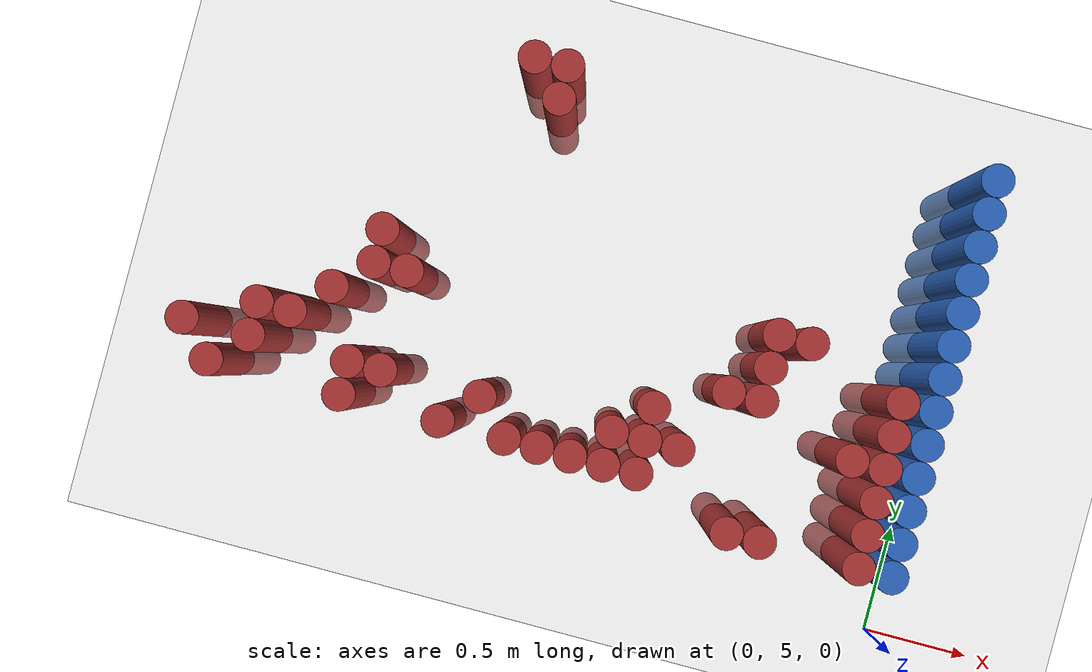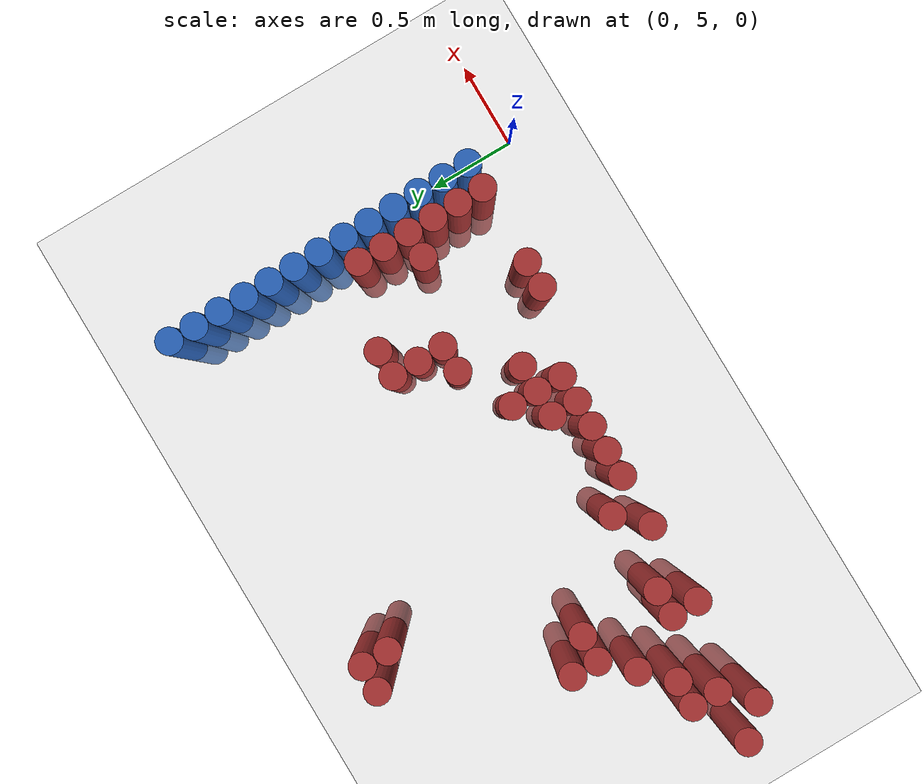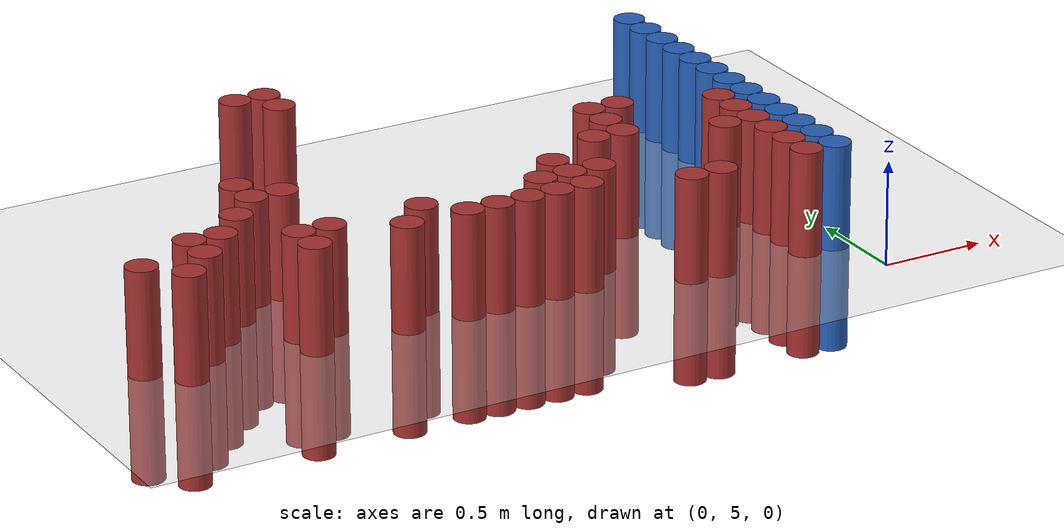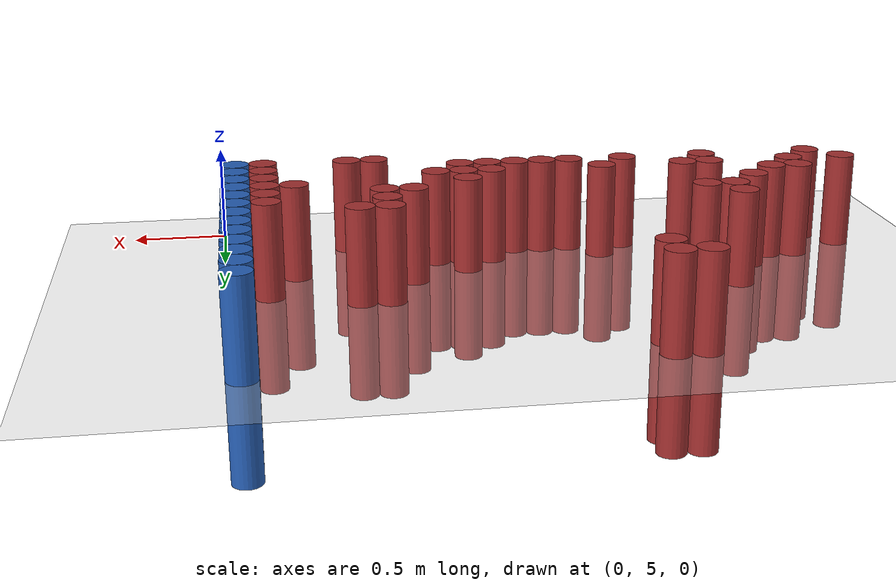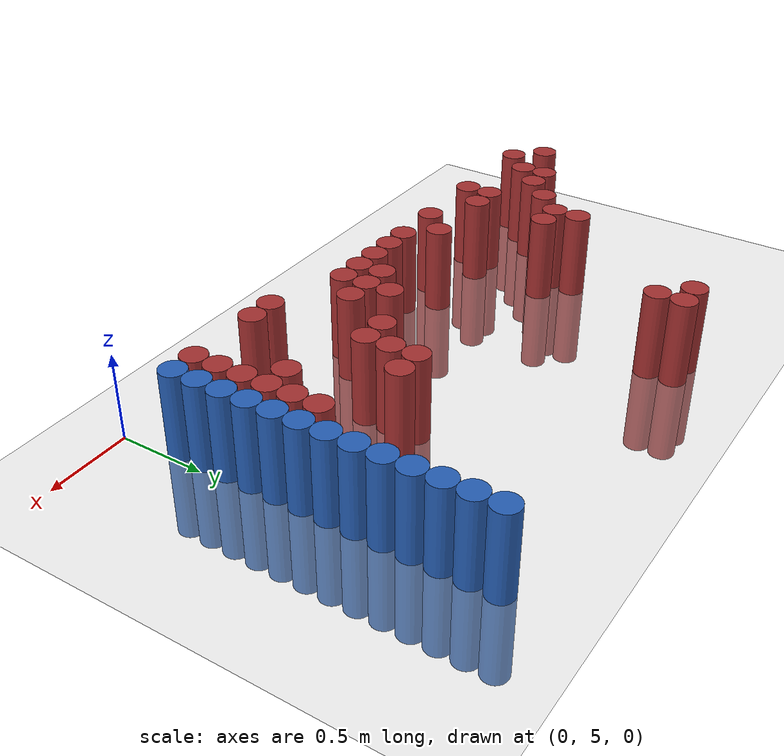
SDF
<sdf version="1.6">
 <world name="default">
  <model name="ground_plane">
   <static>1</static>
   <link name="link">
    <collision name="collision">
     <geometry><plane><normal>0 0 1</normal><size>100 100</size></plane></geometry>
     <surface><friction><ode><mu>100</mu><mu2>50</mu2></ode></friction></surface>
    </collision>
    <visual name="visual">
     <cast_shadows>0</cast_shadows>
     <geometry><plane><normal>0 0 1</normal><size>100 100</size></plane></geometry>
     <material>
      <script><uri>file://media/materials/scripts/gazebo.material</uri><name>Gazebo/Grey</name></script>
     </material>
    </visual>
   </link>
  </model>
  <model name="unit_cylinder_164">
   <static>1</static>
   <pose>-3.375000 5.625000 0.000000 0.000000 0.000000 0.000000</pose>
   <link name="link">
    <inertial>
     <mass>1</mass>
     <inertia><ixx>0.145833</ixx><ixy>0</ixy><ixz>0</ixz><iyy>0.145833</iyy><iyz>0</iyz><izz>0.125</izz></inertia>
    </inertial>
    <collision name="collision">
     <geometry><cylinder><radius>0.075000</radius><length>1</length></cylinder></geometry>
    </collision>
    <visual name="visual">
     <geometry><cylinder><radius>0.075000</radius><length>1</length></cylinder></geometry>
     <material>
      <ambient>0.648000 0.192000 0.192000 1</ambient>
      <diffuse>0.648000 0.192000 0.192000 1</diffuse>
     </material>
     <material>
      <script><name>Gazebo/Grey</name><uri>file://media/materials/scripts/gazebo.material</uri></script>
     </material>
    </visual>
   </link>
  </model>
  <model name="unit_cylinder_165">
   <static>1</static>
   <pose>-3.225000 5.475000 0.000000 0.000000 0.000000 0.000000</pose>
   <link name="link">
    <inertial>
     <mass>1</mass>
     <inertia><ixx>0.145833</ixx><ixy>0</ixy><ixz>0</ixz><iyy>0.145833</iyy><iyz>0</iyz><izz>0.125</izz></inertia>
    </inertial>
    <collision name="collision">
     <geometry><cylinder><radius>0.075000</radius><length>1</length></cylinder></geometry>
    </collision>
    <visual name="visual">
     <geometry><cylinder><radius>0.075000</radius><length>1</length></cylinder></geometry>
     <material>
      <ambient>0.648000 0.192000 0.192000 1</ambient>
      <diffuse>0.648000 0.192000 0.192000 1</diffuse>
     </material>
     <material>
      <script><name>Gazebo/Grey</name><uri>file://media/materials/scripts/gazebo.material</uri></script>
     </material>
    </visual>
   </link>
  </model>
  <model name="unit_cylinder_166">
   <static>1</static>
   <pose>-3.075000 5.625000 0.000000 0.000000 0.000000 0.000000</pose>
   <link name="link">
    <inertial>
     <mass>1</mass>
     <inertia><ixx>0.145833</ixx><ixy>0</ixy><ixz>0</ixz><iyy>0.145833</iyy><iyz>0</iyz><izz>0.125</izz></inertia>
    </inertial>
    <collision name="collision">
     <geometry><cylinder><radius>0.075000</radius><length>1</length></cylinder></geometry>
    </collision>
    <visual name="visual">
     <geometry><cylinder><radius>0.075000</radius><length>1</length></cylinder></geometry>
     <material>
      <ambient>0.648000 0.192000 0.192000 1</ambient>
      <diffuse>0.648000 0.192000 0.192000 1</diffuse>
     </material>
     <material>
      <script><name>Gazebo/Grey</name><uri>file://media/materials/scripts/gazebo.material</uri></script>
     </material>
    </visual>
   </link>
  </model>
  <model name="unit_cylinder_167">
   <static>1</static>
   <pose>-3.075000 5.775000 0.000000 0.000000 0.000000 0.000000</pose>
   <link name="link">
    <inertial>
     <mass>1</mass>
     <inertia><ixx>0.145833</ixx><ixy>0</ixy><ixz>0</ixz><iyy>0.145833</iyy><iyz>0</iyz><izz>0.125</izz></inertia>
    </inertial>
    <collision name="collision">
     <geometry><cylinder><radius>0.075000</radius><length>1</length></cylinder></geometry>
    </collision>
    <visual name="visual">
     <geometry><cylinder><radius>0.075000</radius><length>1</length></cylinder></geometry>
     <material>
      <ambient>0.648000 0.192000 0.192000 1</ambient>
      <diffuse>0.648000 0.192000 0.192000 1</diffuse>
     </material>
     <material>
      <script><name>Gazebo/Grey</name><uri>file://media/materials/scripts/gazebo.material</uri></script>
     </material>
    </visual>
   </link>
  </model>
  <model name="unit_cylinder_168">
   <static>1</static>
   <pose>-2.925000 5.775000 0.000000 0.000000 0.000000 0.000000</pose>
   <link name="link">
    <inertial>
     <mass>1</mass>
     <inertia><ixx>0.145833</ixx><ixy>0</ixy><ixz>0</ixz><iyy>0.145833</iyy><iyz>0</iyz><izz>0.125</izz></inertia>
    </inertial>
    <collision name="collision">
     <geometry><cylinder><radius>0.075000</radius><length>1</length></cylinder></geometry>
    </collision>
    <visual name="visual">
     <geometry><cylinder><radius>0.075000</radius><length>1</length></cylinder></geometry>
     <material>
      <ambient>0.648000 0.192000 0.192000 1</ambient>
      <diffuse>0.648000 0.192000 0.192000 1</diffuse>
     </material>
     <material>
      <script><name>Gazebo/Grey</name><uri>file://media/materials/scripts/gazebo.material</uri></script>
     </material>
    </visual>
   </link>
  </model>
  <model name="unit_cylinder_169">
   <static>1</static>
   <pose>-2.775000 5.925000 0.000000 0.000000 0.000000 0.000000</pose>
   <link name="link">
    <inertial>
     <mass>1</mass>
     <inertia><ixx>0.145833</ixx><ixy>0</ixy><ixz>0</ixz><iyy>0.145833</iyy><iyz>0</iyz><izz>0.125</izz></inertia>
    </inertial>
    <collision name="collision">
     <geometry><cylinder><radius>0.075000</radius><length>1</length></cylinder></geometry>
    </collision>
    <visual name="visual">
     <geometry><cylinder><radius>0.075000</radius><length>1</length></cylinder></geometry>
     <material>
      <ambient>0.648000 0.192000 0.192000 1</ambient>
      <diffuse>0.648000 0.192000 0.192000 1</diffuse>
     </material>
     <material>
      <script><name>Gazebo/Grey</name><uri>file://media/materials/scripts/gazebo.material</uri></script>
     </material>
    </visual>
   </link>
  </model>
  <model name="unit_cylinder_170">
   <static>1</static>
   <pose>-2.625000 5.475000 0.000000 0.000000 0.000000 0.000000</pose>
   <link name="link">
    <inertial>
     <mass>1</mass>
     <inertia><ixx>0.145833</ixx><ixy>0</ixy><ixz>0</ixz><iyy>0.145833</iyy><iyz>0</iyz><izz>0.125</izz></inertia>
    </inertial>
    <collision name="collision">
     <geometry><cylinder><radius>0.075000</radius><length>1</length></cylinder></geometry>
    </collision>
    <visual name="visual">
     <geometry><cylinder><radius>0.075000</radius><length>1</length></cylinder></geometry>
     <material>
      <ambient>0.648000 0.192000 0.192000 1</ambient>
      <diffuse>0.648000 0.192000 0.192000 1</diffuse>
     </material>
     <material>
      <script><name>Gazebo/Grey</name><uri>file://media/materials/scripts/gazebo.material</uri></script>
     </material>
    </visual>
   </link>
  </model>
  <model name="unit_cylinder_171">
   <static>1</static>
   <pose>-2.625000 5.625000 0.000000 0.000000 0.000000 0.000000</pose>
   <link name="link">
    <inertial>
     <mass>1</mass>
     <inertia><ixx>0.145833</ixx><ixy>0</ixy><ixz>0</ixz><iyy>0.145833</iyy><iyz>0</iyz><izz>0.125</izz></inertia>
    </inertial>
    <collision name="collision">
     <geometry><cylinder><radius>0.075000</radius><length>1</length></cylinder></geometry>
    </collision>
    <visual name="visual">
     <geometry><cylinder><radius>0.075000</radius><length>1</length></cylinder></geometry>
     <material>
      <ambient>0.648000 0.192000 0.192000 1</ambient>
      <diffuse>0.648000 0.192000 0.192000 1</diffuse>
     </material>
     <material>
      <script><name>Gazebo/Grey</name><uri>file://media/materials/scripts/gazebo.material</uri></script>
     </material>
    </visual>
   </link>
  </model>
  <model name="unit_cylinder_172">
   <static>1</static>
   <pose>-2.625000 6.075000 0.000000 0.000000 0.000000 0.000000</pose>
   <link name="link">
    <inertial>
     <mass>1</mass>
     <inertia><ixx>0.145833</ixx><ixy>0</ixy><ixz>0</ixz><iyy>0.145833</iyy><iyz>0</iyz><izz>0.125</izz></inertia>
    </inertial>
    <collision name="collision">
     <geometry><cylinder><radius>0.075000</radius><length>1</length></cylinder></geometry>
    </collision>
    <visual name="visual">
     <geometry><cylinder><radius>0.075000</radius><length>1</length></cylinder></geometry>
     <material>
      <ambient>0.648000 0.192000 0.192000 1</ambient>
      <diffuse>0.648000 0.192000 0.192000 1</diffuse>
     </material>
     <material>
      <script><name>Gazebo/Grey</name><uri>file://media/materials/scripts/gazebo.material</uri></script>
     </material>
    </visual>
   </link>
  </model>
  <model name="unit_cylinder_173">
   <static>1</static>
   <pose>-2.625000 6.225000 0.000000 0.000000 0.000000 0.000000</pose>
   <link name="link">
    <inertial>
     <mass>1</mass>
     <inertia><ixx>0.145833</ixx><ixy>0</ixy><ixz>0</ixz><iyy>0.145833</iyy><iyz>0</iyz><izz>0.125</izz></inertia>
    </inertial>
    <collision name="collision">
     <geometry><cylinder><radius>0.075000</radius><length>1</length></cylinder></geometry>
    </collision>
    <visual name="visual">
     <geometry><cylinder><radius>0.075000</radius><length>1</length></cylinder></geometry>
     <material>
      <ambient>0.648000 0.192000 0.192000 1</ambient>
      <diffuse>0.648000 0.192000 0.192000 1</diffuse>
     </material>
     <material>
      <script><name>Gazebo/Grey</name><uri>file://media/materials/scripts/gazebo.material</uri></script>
     </material>
    </visual>
   </link>
  </model>
  <model name="unit_cylinder_174">
   <static>1</static>
   <pose>-2.475000 5.625000 0.000000 0.000000 0.000000 0.000000</pose>
   <link name="link">
    <inertial>
     <mass>1</mass>
     <inertia><ixx>0.145833</ixx><ixy>0</ixy><ixz>0</ixz><iyy>0.145833</iyy><iyz>0</iyz><izz>0.125</izz></inertia>
    </inertial>
    <collision name="collision">
     <geometry><cylinder><radius>0.075000</radius><length>1</length></cylinder></geometry>
    </collision>
    <visual name="visual">
     <geometry><cylinder><radius>0.075000</radius><length>1</length></cylinder></geometry>
     <material>
      <ambient>0.648000 0.192000 0.192000 1</ambient>
      <diffuse>0.648000 0.192000 0.192000 1</diffuse>
     </material>
     <material>
      <script><name>Gazebo/Grey</name><uri>file://media/materials/scripts/gazebo.material</uri></script>
     </material>
    </visual>
   </link>
  </model>
  <model name="unit_cylinder_175">
   <static>1</static>
   <pose>-2.475000 6.075000 0.000000 0.000000 0.000000 0.000000</pose>
   <link name="link">
    <inertial>
     <mass>1</mass>
     <inertia><ixx>0.145833</ixx><ixy>0</ixy><ixz>0</ixz><iyy>0.145833</iyy><iyz>0</iyz><izz>0.125</izz></inertia>
    </inertial>
    <collision name="collision">
     <geometry><cylinder><radius>0.075000</radius><length>1</length></cylinder></geometry>
    </collision>
    <visual name="visual">
     <geometry><cylinder><radius>0.075000</radius><length>1</length></cylinder></geometry>
     <material>
      <ambient>0.648000 0.192000 0.192000 1</ambient>
      <diffuse>0.648000 0.192000 0.192000 1</diffuse>
     </material>
     <material>
      <script><name>Gazebo/Grey</name><uri>file://media/materials/scripts/gazebo.material</uri></script>
     </material>
    </visual>
   </link>
  </model>
  <model name="unit_cylinder_176">
   <static>1</static>
   <pose>-2.175000 5.475000 0.000000 0.000000 0.000000 0.000000</pose>
   <link name="link">
    <inertial>
     <mass>1</mass>
     <inertia><ixx>0.145833</ixx><ixy>0</ixy><ixz>0</ixz><iyy>0.145833</iyy><iyz>0</iyz><izz>0.125</izz></inertia>
    </inertial>
    <collision name="collision">
     <geometry><cylinder><radius>0.075000</radius><length>1</length></cylinder></geometry>
    </collision>
    <visual name="visual">
     <geometry><cylinder><radius>0.075000</radius><length>1</length></cylinder></geometry>
     <material>
      <ambient>0.648000 0.192000 0.192000 1</ambient>
      <diffuse>0.648000 0.192000 0.192000 1</diffuse>
     </material>
     <material>
      <script><name>Gazebo/Grey</name><uri>file://media/materials/scripts/gazebo.material</uri></script>
     </material>
    </visual>
   </link>
  </model>
  <model name="unit_cylinder_177">
   <static>1</static>
   <pose>-2.175000 7.125000 0.000000 0.000000 0.000000 0.000000</pose>
   <link name="link">
    <inertial>
     <mass>1</mass>
     <inertia><ixx>0.145833</ixx><ixy>0</ixy><ixz>0</ixz><iyy>0.145833</iyy><iyz>0</iyz><izz>0.125</izz></inertia>
    </inertial>
    <collision name="collision">
     <geometry><cylinder><radius>0.075000</radius><length>1</length></cylinder></geometry>
    </collision>
    <visual name="visual">
     <geometry><cylinder><radius>0.075000</radius><length>1</length></cylinder></geometry>
     <material>
      <ambient>0.648000 0.192000 0.192000 1</ambient>
      <diffuse>0.648000 0.192000 0.192000 1</diffuse>
     </material>
     <material>
      <script><name>Gazebo/Grey</name><uri>file://media/materials/scripts/gazebo.material</uri></script>
     </material>
    </visual>
   </link>
  </model>
  <model name="unit_cylinder_179">
   <static>1</static>
   <pose>-2.025000 5.625000 0.000000 0.000000 0.000000 0.000000</pose>
   <link name="link">
    <inertial>
     <mass>1</mass>
     <inertia><ixx>0.145833</ixx><ixy>0</ixy><ixz>0</ixz><iyy>0.145833</iyy><iyz>0</iyz><izz>0.125</izz></inertia>
    </inertial>
    <collision name="collision">
     <geometry><cylinder><radius>0.075000</radius><length>1</length></cylinder></geometry>
    </collision>
    <visual name="visual">
     <geometry><cylinder><radius>0.075000</radius><length>1</length></cylinder></geometry>
     <material>
      <ambient>0.648000 0.192000 0.192000 1</ambient>
      <diffuse>0.648000 0.192000 0.192000 1</diffuse>
     </material>
     <material>
      <script><name>Gazebo/Grey</name><uri>file://media/materials/scripts/gazebo.material</uri></script>
     </material>
    </visual>
   </link>
  </model>
  <model name="unit_cylinder_180">
   <static>1</static>
   <pose>-2.025000 6.975000 0.000000 0.000000 0.000000 0.000000</pose>
   <link name="link">
    <inertial>
     <mass>1</mass>
     <inertia><ixx>0.145833</ixx><ixy>0</ixy><ixz>0</ixz><iyy>0.145833</iyy><iyz>0</iyz><izz>0.125</izz></inertia>
    </inertial>
    <collision name="collision">
     <geometry><cylinder><radius>0.075000</radius><length>1</length></cylinder></geometry>
    </collision>
    <visual name="visual">
     <geometry><cylinder><radius>0.075000</radius><length>1</length></cylinder></geometry>
     <material>
      <ambient>0.648000 0.192000 0.192000 1</ambient>
      <diffuse>0.648000 0.192000 0.192000 1</diffuse>
     </material>
     <material>
      <script><name>Gazebo/Grey</name><uri>file://media/materials/scripts/gazebo.material</uri></script>
     </material>
    </visual>
   </link>
  </model>
  <model name="unit_cylinder_181">
   <static>1</static>
   <pose>-2.025000 7.125000 0.000000 0.000000 0.000000 0.000000</pose>
   <link name="link">
    <inertial>
     <mass>1</mass>
     <inertia><ixx>0.145833</ixx><ixy>0</ixy><ixz>0</ixz><iyy>0.145833</iyy><iyz>0</iyz><izz>0.125</izz></inertia>
    </inertial>
    <collision name="collision">
     <geometry><cylinder><radius>0.075000</radius><length>1</length></cylinder></geometry>
    </collision>
    <visual name="visual">
     <geometry><cylinder><radius>0.075000</radius><length>1</length></cylinder></geometry>
     <material>
      <ambient>0.648000 0.192000 0.192000 1</ambient>
      <diffuse>0.648000 0.192000 0.192000 1</diffuse>
     </material>
     <material>
      <script><name>Gazebo/Grey</name><uri>file://media/materials/scripts/gazebo.material</uri></script>
     </material>
    </visual>
   </link>
  </model>
  <model name="unit_cylinder_182">
   <static>1</static>
   <pose>-1.875000 5.475000 0.000000 0.000000 0.000000 0.000000</pose>
   <link name="link">
    <inertial>
     <mass>1</mass>
     <inertia><ixx>0.145833</ixx><ixy>0</ixy><ixz>0</ixz><iyy>0.145833</iyy><iyz>0</iyz><izz>0.125</izz></inertia>
    </inertial>
    <collision name="collision">
     <geometry><cylinder><radius>0.075000</radius><length>1</length></cylinder></geometry>
    </collision>
    <visual name="visual">
     <geometry><cylinder><radius>0.075000</radius><length>1</length></cylinder></geometry>
     <material>
      <ambient>0.648000 0.192000 0.192000 1</ambient>
      <diffuse>0.648000 0.192000 0.192000 1</diffuse>
     </material>
     <material>
      <script><name>Gazebo/Grey</name><uri>file://media/materials/scripts/gazebo.material</uri></script>
     </material>
    </visual>
   </link>
  </model>
  <model name="unit_cylinder_184">
   <static>1</static>
   <pose>-1.725000 5.475000 0.000000 0.000000 0.000000 0.000000</pose>
   <link name="link">
    <inertial>
     <mass>1</mass>
     <inertia><ixx>0.145833</ixx><ixy>0</ixy><ixz>0</ixz><iyy>0.145833</iyy><iyz>0</iyz><izz>0.125</izz></inertia>
    </inertial>
    <collision name="collision">
     <geometry><cylinder><radius>0.075000</radius><length>1</length></cylinder></geometry>
    </collision>
    <visual name="visual">
     <geometry><cylinder><radius>0.075000</radius><length>1</length></cylinder></geometry>
     <material>
      <ambient>0.648000 0.192000 0.192000 1</ambient>
      <diffuse>0.648000 0.192000 0.192000 1</diffuse>
     </material>
     <material>
      <script><name>Gazebo/Grey</name><uri>file://media/materials/scripts/gazebo.material</uri></script>
     </material>
    </visual>
   </link>
  </model>
  <model name="unit_cylinder_189">
   <static>1</static>
   <pose>-1.575000 5.475000 0.000000 0.000000 0.000000 0.000000</pose>
   <link name="link">
    <inertial>
     <mass>1</mass>
     <inertia><ixx>0.145833</ixx><ixy>0</ixy><ixz>0</ixz><iyy>0.145833</iyy><iyz>0</iyz><izz>0.125</izz></inertia>
    </inertial>
    <collision name="collision">
     <geometry><cylinder><radius>0.075000</radius><length>1</length></cylinder></geometry>
    </collision>
    <visual name="visual">
     <geometry><cylinder><radius>0.075000</radius><length>1</length></cylinder></geometry>
     <material>
      <ambient>0.648000 0.192000 0.192000 1</ambient>
      <diffuse>0.648000 0.192000 0.192000 1</diffuse>
     </material>
     <material>
      <script><name>Gazebo/Grey</name><uri>file://media/materials/scripts/gazebo.material</uri></script>
     </material>
    </visual>
   </link>
  </model>
  <model name="unit_cylinder_194">
   <static>1</static>
   <pose>-1.425000 5.475000 0.000000 0.000000 0.000000 0.000000</pose>
   <link name="link">
    <inertial>
     <mass>1</mass>
     <inertia><ixx>0.145833</ixx><ixy>0</ixy><ixz>0</ixz><iyy>0.145833</iyy><iyz>0</iyz><izz>0.125</izz></inertia>
    </inertial>
    <collision name="collision">
     <geometry><cylinder><radius>0.075000</radius><length>1</length></cylinder></geometry>
    </collision>
    <visual name="visual">
     <geometry><cylinder><radius>0.075000</radius><length>1</length></cylinder></geometry>
     <material>
      <ambient>0.648000 0.192000 0.192000 1</ambient>
      <diffuse>0.648000 0.192000 0.192000 1</diffuse>
     </material>
     <material>
      <script><name>Gazebo/Grey</name><uri>file://media/materials/scripts/gazebo.material</uri></script>
     </material>
    </visual>
   </link>
  </model>
  <model name="unit_cylinder_195">
   <static>1</static>
   <pose>-1.425000 5.625000 0.000000 0.000000 0.000000 0.000000</pose>
   <link name="link">
    <inertial>
     <mass>1</mass>
     <inertia><ixx>0.145833</ixx><ixy>0</ixy><ixz>0</ixz><iyy>0.145833</iyy><iyz>0</iyz><izz>0.125</izz></inertia>
    </inertial>
    <collision name="collision">
     <geometry><cylinder><radius>0.075000</radius><length>1</length></cylinder></geometry>
    </collision>
    <visual name="visual">
     <geometry><cylinder><radius>0.075000</radius><length>1</length></cylinder></geometry>
     <material>
      <ambient>0.648000 0.192000 0.192000 1</ambient>
      <diffuse>0.648000 0.192000 0.192000 1</diffuse>
     </material>
     <material>
      <script><name>Gazebo/Grey</name><uri>file://media/materials/scripts/gazebo.material</uri></script>
     </material>
    </visual>
   </link>
  </model>
  <model name="unit_cylinder_200">
   <static>1</static>
   <pose>-1.275000 5.475000 0.000000 0.000000 0.000000 0.000000</pose>
   <link name="link">
    <inertial>
     <mass>1</mass>
     <inertia><ixx>0.145833</ixx><ixy>0</ixy><ixz>0</ixz><iyy>0.145833</iyy><iyz>0</iyz><izz>0.125</izz></inertia>
    </inertial>
    <collision name="collision">
     <geometry><cylinder><radius>0.075000</radius><length>1</length></cylinder></geometry>
    </collision>
    <visual name="visual">
     <geometry><cylinder><radius>0.075000</radius><length>1</length></cylinder></geometry>
     <material>
      <ambient>0.648000 0.192000 0.192000 1</ambient>
      <diffuse>0.648000 0.192000 0.192000 1</diffuse>
     </material>
     <material>
      <script><name>Gazebo/Grey</name><uri>file://media/materials/scripts/gazebo.material</uri></script>
     </material>
    </visual>
   </link>
  </model>
  <model name="unit_cylinder_201">
   <static>1</static>
   <pose>-1.275000 5.625000 0.000000 0.000000 0.000000 0.000000</pose>
   <link name="link">
    <inertial>
     <mass>1</mass>
     <inertia><ixx>0.145833</ixx><ixy>0</ixy><ixz>0</ixz><iyy>0.145833</iyy><iyz>0</iyz><izz>0.125</izz></inertia>
    </inertial>
    <collision name="collision">
     <geometry><cylinder><radius>0.075000</radius><length>1</length></cylinder></geometry>
    </collision>
    <visual name="visual">
     <geometry><cylinder><radius>0.075000</radius><length>1</length></cylinder></geometry>
     <material>
      <ambient>0.648000 0.192000 0.192000 1</ambient>
      <diffuse>0.648000 0.192000 0.192000 1</diffuse>
     </material>
     <material>
      <script><name>Gazebo/Grey</name><uri>file://media/materials/scripts/gazebo.material</uri></script>
     </material>
    </visual>
   </link>
  </model>
  <model name="unit_cylinder_202">
   <static>1</static>
   <pose>-1.275000 5.775000 0.000000 0.000000 0.000000 0.000000</pose>
   <link name="link">
    <inertial>
     <mass>1</mass>
     <inertia><ixx>0.145833</ixx><ixy>0</ixy><ixz>0</ixz><iyy>0.145833</iyy><iyz>0</iyz><izz>0.125</izz></inertia>
    </inertial>
    <collision name="collision">
     <geometry><cylinder><radius>0.075000</radius><length>1</length></cylinder></geometry>
    </collision>
    <visual name="visual">
     <geometry><cylinder><radius>0.075000</radius><length>1</length></cylinder></geometry>
     <material>
      <ambient>0.648000 0.192000 0.192000 1</ambient>
      <diffuse>0.648000 0.192000 0.192000 1</diffuse>
     </material>
     <material>
      <script><name>Gazebo/Grey</name><uri>file://media/materials/scripts/gazebo.material</uri></script>
     </material>
    </visual>
   </link>
  </model>
  <model name="unit_cylinder_204">
   <static>1</static>
   <pose>-1.125000 5.625000 0.000000 0.000000 0.000000 0.000000</pose>
   <link name="link">
    <inertial>
     <mass>1</mass>
     <inertia><ixx>0.145833</ixx><ixy>0</ixy><ixz>0</ixz><iyy>0.145833</iyy><iyz>0</iyz><izz>0.125</izz></inertia>
    </inertial>
    <collision name="collision">
     <geometry><cylinder><radius>0.075000</radius><length>1</length></cylinder></geometry>
    </collision>
    <visual name="visual">
     <geometry><cylinder><radius>0.075000</radius><length>1</length></cylinder></geometry>
     <material>
      <ambient>0.648000 0.192000 0.192000 1</ambient>
      <diffuse>0.648000 0.192000 0.192000 1</diffuse>
     </material>
     <material>
      <script><name>Gazebo/Grey</name><uri>file://media/materials/scripts/gazebo.material</uri></script>
     </material>
    </visual>
   </link>
  </model>
  <model name="unit_cylinder_205">
   <static>1</static>
   <pose>-0.975000 5.925000 0.000000 0.000000 0.000000 0.000000</pose>
   <link name="link">
    <inertial>
     <mass>1</mass>
     <inertia><ixx>0.145833</ixx><ixy>0</ixy><ixz>0</ixz><iyy>0.145833</iyy><iyz>0</iyz><izz>0.125</izz></inertia>
    </inertial>
    <collision name="collision">
     <geometry><cylinder><radius>0.075000</radius><length>1</length></cylinder></geometry>
    </collision>
    <visual name="visual">
     <geometry><cylinder><radius>0.075000</radius><length>1</length></cylinder></geometry>
     <material>
      <ambient>0.648000 0.192000 0.192000 1</ambient>
      <diffuse>0.648000 0.192000 0.192000 1</diffuse>
     </material>
     <material>
      <script><name>Gazebo/Grey</name><uri>file://media/materials/scripts/gazebo.material</uri></script>
     </material>
    </visual>
   </link>
  </model>
  <model name="unit_cylinder_207">
   <static>1</static>
   <pose>-0.825000 5.325000 0.000000 0.000000 0.000000 0.000000</pose>
   <link name="link">
    <inertial>
     <mass>1</mass>
     <inertia><ixx>0.145833</ixx><ixy>0</ixy><ixz>0</ixz><iyy>0.145833</iyy><iyz>0</iyz><izz>0.125</izz></inertia>
    </inertial>
    <collision name="collision">
     <geometry><cylinder><radius>0.075000</radius><length>1</length></cylinder></geometry>
    </collision>
    <visual name="visual">
     <geometry><cylinder><radius>0.075000</radius><length>1</length></cylinder></geometry>
     <material>
      <ambient>0.648000 0.192000 0.192000 1</ambient>
      <diffuse>0.648000 0.192000 0.192000 1</diffuse>
     </material>
     <material>
      <script><name>Gazebo/Grey</name><uri>file://media/materials/scripts/gazebo.material</uri></script>
     </material>
    </visual>
   </link>
  </model>
  <model name="unit_cylinder_208">
   <static>1</static>
   <pose>-0.825000 5.925000 0.000000 0.000000 0.000000 0.000000</pose>
   <link name="link">
    <inertial>
     <mass>1</mass>
     <inertia><ixx>0.145833</ixx><ixy>0</ixy><ixz>0</ixz><iyy>0.145833</iyy><iyz>0</iyz><izz>0.125</izz></inertia>
    </inertial>
    <collision name="collision">
     <geometry><cylinder><radius>0.075000</radius><length>1</length></cylinder></geometry>
    </collision>
    <visual name="visual">
     <geometry><cylinder><radius>0.075000</radius><length>1</length></cylinder></geometry>
     <material>
      <ambient>0.648000 0.192000 0.192000 1</ambient>
      <diffuse>0.648000 0.192000 0.192000 1</diffuse>
     </material>
     <material>
      <script><name>Gazebo/Grey</name><uri>file://media/materials/scripts/gazebo.material</uri></script>
     </material>
    </visual>
   </link>
  </model>
  <model name="unit_cylinder_209">
   <static>1</static>
   <pose>-0.825000 6.075000 0.000000 0.000000 0.000000 0.000000</pose>
   <link name="link">
    <inertial>
     <mass>1</mass>
     <inertia><ixx>0.145833</ixx><ixy>0</ixy><ixz>0</ixz><iyy>0.145833</iyy><iyz>0</iyz><izz>0.125</izz></inertia>
    </inertial>
    <collision name="collision">
     <geometry><cylinder><radius>0.075000</radius><length>1</length></cylinder></geometry>
    </collision>
    <visual name="visual">
     <geometry><cylinder><radius>0.075000</radius><length>1</length></cylinder></geometry>
     <material>
      <ambient>0.648000 0.192000 0.192000 1</ambient>
      <diffuse>0.648000 0.192000 0.192000 1</diffuse>
     </material>
     <material>
      <script><name>Gazebo/Grey</name><uri>file://media/materials/scripts/gazebo.material</uri></script>
     </material>
    </visual>
   </link>
  </model>
  <model name="unit_cylinder_210">
   <static>1</static>
   <pose>-0.825000 6.225000 0.000000 0.000000 0.000000 0.000000</pose>
   <link name="link">
    <inertial>
     <mass>1</mass>
     <inertia><ixx>0.145833</ixx><ixy>0</ixy><ixz>0</ixz><iyy>0.145833</iyy><iyz>0</iyz><izz>0.125</izz></inertia>
    </inertial>
    <collision name="collision">
     <geometry><cylinder><radius>0.075000</radius><length>1</length></cylinder></geometry>
    </collision>
    <visual name="visual">
     <geometry><cylinder><radius>0.075000</radius><length>1</length></cylinder></geometry>
     <material>
      <ambient>0.648000 0.192000 0.192000 1</ambient>
      <diffuse>0.648000 0.192000 0.192000 1</diffuse>
     </material>
     <material>
      <script><name>Gazebo/Grey</name><uri>file://media/materials/scripts/gazebo.material</uri></script>
     </material>
    </visual>
   </link>
  </model>
  <model name="unit_cylinder_212">
   <static>1</static>
   <pose>-0.675000 5.325000 0.000000 0.000000 0.000000 0.000000</pose>
   <link name="link">
    <inertial>
     <mass>1</mass>
     <inertia><ixx>0.145833</ixx><ixy>0</ixy><ixz>0</ixz><iyy>0.145833</iyy><iyz>0</iyz><izz>0.125</izz></inertia>
    </inertial>
    <collision name="collision">
     <geometry><cylinder><radius>0.075000</radius><length>1</length></cylinder></geometry>
    </collision>
    <visual name="visual">
     <geometry><cylinder><radius>0.075000</radius><length>1</length></cylinder></geometry>
     <material>
      <ambient>0.648000 0.192000 0.192000 1</ambient>
      <diffuse>0.648000 0.192000 0.192000 1</diffuse>
     </material>
     <material>
      <script><name>Gazebo/Grey</name><uri>file://media/materials/scripts/gazebo.material</uri></script>
     </material>
    </visual>
   </link>
  </model>
  <model name="unit_cylinder_213">
   <static>1</static>
   <pose>-0.675000 6.225000 0.000000 0.000000 0.000000 0.000000</pose>
   <link name="link">
    <inertial>
     <mass>1</mass>
     <inertia><ixx>0.145833</ixx><ixy>0</ixy><ixz>0</ixz><iyy>0.145833</iyy><iyz>0</iyz><izz>0.125</izz></inertia>
    </inertial>
    <collision name="collision">
     <geometry><cylinder><radius>0.075000</radius><length>1</length></cylinder></geometry>
    </collision>
    <visual name="visual">
     <geometry><cylinder><radius>0.075000</radius><length>1</length></cylinder></geometry>
     <material>
      <ambient>0.648000 0.192000 0.192000 1</ambient>
      <diffuse>0.648000 0.192000 0.192000 1</diffuse>
     </material>
     <material>
      <script><name>Gazebo/Grey</name><uri>file://media/materials/scripts/gazebo.material</uri></script>
     </material>
    </visual>
   </link>
  </model>
  <model name="unit_cylinder_216">
   <static>1</static>
   <pose>-0.375000 5.775000 0.000000 0.000000 0.000000 0.000000</pose>
   <link name="link">
    <inertial>
     <mass>1</mass>
     <inertia><ixx>0.145833</ixx><ixy>0</ixy><ixz>0</ixz><iyy>0.145833</iyy><iyz>0</iyz><izz>0.125</izz></inertia>
    </inertial>
    <collision name="collision">
     <geometry><cylinder><radius>0.075000</radius><length>1</length></cylinder></geometry>
    </collision>
    <visual name="visual">
     <geometry><cylinder><radius>0.075000</radius><length>1</length></cylinder></geometry>
     <material>
      <ambient>0.648000 0.192000 0.192000 1</ambient>
      <diffuse>0.648000 0.192000 0.192000 1</diffuse>
     </material>
     <material>
      <script><name>Gazebo/Grey</name><uri>file://media/materials/scripts/gazebo.material</uri></script>
     </material>
    </visual>
   </link>
  </model>
  <model name="unit_cylinder_220">
   <static>1</static>
   <pose>-0.225000 5.325000 0.000000 0.000000 0.000000 0.000000</pose>
   <link name="link">
    <inertial>
     <mass>1</mass>
     <inertia><ixx>0.145833</ixx><ixy>0</ixy><ixz>0</ixz><iyy>0.145833</iyy><iyz>0</iyz><izz>0.125</izz></inertia>
    </inertial>
    <collision name="collision">
     <geometry><cylinder><radius>0.075000</radius><length>1</length></cylinder></geometry>
    </collision>
    <visual name="visual">
     <geometry><cylinder><radius>0.075000</radius><length>1</length></cylinder></geometry>
     <material>
      <ambient>0.648000 0.192000 0.192000 1</ambient>
      <diffuse>0.648000 0.192000 0.192000 1</diffuse>
     </material>
     <material>
      <script><name>Gazebo/Grey</name><uri>file://media/materials/scripts/gazebo.material</uri></script>
     </material>
    </visual>
   </link>
  </model>
  <model name="unit_cylinder_221">
   <static>1</static>
   <pose>-0.225000 5.475000 0.000000 0.000000 0.000000 0.000000</pose>
   <link name="link">
    <inertial>
     <mass>1</mass>
     <inertia><ixx>0.145833</ixx><ixy>0</ixy><ixz>0</ixz><iyy>0.145833</iyy><iyz>0</iyz><izz>0.125</izz></inertia>
    </inertial>
    <collision name="collision">
     <geometry><cylinder><radius>0.075000</radius><length>1</length></cylinder></geometry>
    </collision>
    <visual name="visual">
     <geometry><cylinder><radius>0.075000</radius><length>1</length></cylinder></geometry>
     <material>
      <ambient>0.648000 0.192000 0.192000 1</ambient>
      <diffuse>0.648000 0.192000 0.192000 1</diffuse>
     </material>
     <material>
      <script><name>Gazebo/Grey</name><uri>file://media/materials/scripts/gazebo.material</uri></script>
     </material>
    </visual>
   </link>
  </model>
  <model name="unit_cylinder_222">
   <static>1</static>
   <pose>-0.225000 5.625000 0.000000 0.000000 0.000000 0.000000</pose>
   <link name="link">
    <inertial>
     <mass>1</mass>
     <inertia><ixx>0.145833</ixx><ixy>0</ixy><ixz>0</ixz><iyy>0.145833</iyy><iyz>0</iyz><izz>0.125</izz></inertia>
    </inertial>
    <collision name="collision">
     <geometry><cylinder><radius>0.075000</radius><length>1</length></cylinder></geometry>
    </collision>
    <visual name="visual">
     <geometry><cylinder><radius>0.075000</radius><length>1</length></cylinder></geometry>
     <material>
      <ambient>0.648000 0.192000 0.192000 1</ambient>
      <diffuse>0.648000 0.192000 0.192000 1</diffuse>
     </material>
     <material>
      <script><name>Gazebo/Grey</name><uri>file://media/materials/scripts/gazebo.material</uri></script>
     </material>
    </visual>
   </link>
  </model>
  <model name="unit_cylinder_223">
   <static>1</static>
   <pose>-0.225000 5.775000 0.000000 0.000000 0.000000 0.000000</pose>
   <link name="link">
    <inertial>
     <mass>1</mass>
     <inertia><ixx>0.145833</ixx><ixy>0</ixy><ixz>0</ixz><iyy>0.145833</iyy><iyz>0</iyz><izz>0.125</izz></inertia>
    </inertial>
    <collision name="collision">
     <geometry><cylinder><radius>0.075000</radius><length>1</length></cylinder></geometry>
    </collision>
    <visual name="visual">
     <geometry><cylinder><radius>0.075000</radius><length>1</length></cylinder></geometry>
     <material>
      <ambient>0.648000 0.192000 0.192000 1</ambient>
      <diffuse>0.648000 0.192000 0.192000 1</diffuse>
     </material>
     <material>
      <script><name>Gazebo/Grey</name><uri>file://media/materials/scripts/gazebo.material</uri></script>
     </material>
    </visual>
   </link>
  </model>
  <model name="unit_cylinder_224">
   <static>1</static>
   <pose>-0.225000 5.925000 0.000000 0.000000 0.000000 0.000000</pose>
   <link name="link">
    <inertial>
     <mass>1</mass>
     <inertia><ixx>0.145833</ixx><ixy>0</ixy><ixz>0</ixz><iyy>0.145833</iyy><iyz>0</iyz><izz>0.125</izz></inertia>
    </inertial>
    <collision name="collision">
     <geometry><cylinder><radius>0.075000</radius><length>1</length></cylinder></geometry>
    </collision>
    <visual name="visual">
     <geometry><cylinder><radius>0.075000</radius><length>1</length></cylinder></geometry>
     <material>
      <ambient>0.648000 0.192000 0.192000 1</ambient>
      <diffuse>0.648000 0.192000 0.192000 1</diffuse>
     </material>
     <material>
      <script><name>Gazebo/Grey</name><uri>file://media/materials/scripts/gazebo.material</uri></script>
     </material>
    </visual>
   </link>
  </model>
  <model name="unit_cylinder_225">
   <static>1</static>
   <pose>-0.225000 6.075000 0.000000 0.000000 0.000000 0.000000</pose>
   <link name="link">
    <inertial>
     <mass>1</mass>
     <inertia><ixx>0.145833</ixx><ixy>0</ixy><ixz>0</ixz><iyy>0.145833</iyy><iyz>0</iyz><izz>0.125</izz></inertia>
    </inertial>
    <collision name="collision">
     <geometry><cylinder><radius>0.075000</radius><length>1</length></cylinder></geometry>
    </collision>
    <visual name="visual">
     <geometry><cylinder><radius>0.075000</radius><length>1</length></cylinder></geometry>
     <material>
      <ambient>0.648000 0.192000 0.192000 1</ambient>
      <diffuse>0.648000 0.192000 0.192000 1</diffuse>
     </material>
     <material>
      <script><name>Gazebo/Grey</name><uri>file://media/materials/scripts/gazebo.material</uri></script>
     </material>
    </visual>
   </link>
  </model>
  <model name="unit_cylinder_236">
   <static>1</static>
   <pose>-0.075000 5.325000 0.000000 0.000000 0.000000 0.000000</pose>
   <link name="link">
    <inertial>
     <mass>1</mass>
     <inertia><ixx>0.145833</ixx><ixy>0</ixy><ixz>0</ixz><iyy>0.145833</iyy><iyz>0</iyz><izz>0.125</izz></inertia>
    </inertial>
    <collision name="collision">
     <geometry><cylinder><radius>0.075000</radius><length>1</length></cylinder></geometry>
    </collision>
    <visual name="visual">
     <geometry><cylinder><radius>0.075000</radius><length>1</length></cylinder></geometry>
     <material>
      <ambient>0.152000 0.379000 0.720000 1</ambient>
      <diffuse>0.152000 0.379000 0.720000 1</diffuse>
     </material>
     <material>
      <script><name>Gazebo/Grey</name><uri>file://media/materials/scripts/gazebo.material</uri></script>
     </material>
    </visual>
   </link>
  </model>
  <model name="unit_cylinder_237">
   <static>1</static>
   <pose>-0.075000 5.475000 0.000000 0.000000 0.000000 0.000000</pose>
   <link name="link">
    <inertial>
     <mass>1</mass>
     <inertia><ixx>0.145833</ixx><ixy>0</ixy><ixz>0</ixz><iyy>0.145833</iyy><iyz>0</iyz><izz>0.125</izz></inertia>
    </inertial>
    <collision name="collision">
     <geometry><cylinder><radius>0.075000</radius><length>1</length></cylinder></geometry>
    </collision>
    <visual name="visual">
     <geometry><cylinder><radius>0.075000</radius><length>1</length></cylinder></geometry>
     <material>
      <ambient>0.152000 0.379000 0.720000 1</ambient>
      <diffuse>0.152000 0.379000 0.720000 1</diffuse>
     </material>
     <material>
      <script><name>Gazebo/Grey</name><uri>file://media/materials/scripts/gazebo.material</uri></script>
     </material>
    </visual>
   </link>
  </model>
  <model name="unit_cylinder_238">
   <static>1</static>
   <pose>-0.075000 5.625000 0.000000 0.000000 0.000000 0.000000</pose>
   <link name="link">
    <inertial>
     <mass>1</mass>
     <inertia><ixx>0.145833</ixx><ixy>0</ixy><ixz>0</ixz><iyy>0.145833</iyy><iyz>0</iyz><izz>0.125</izz></inertia>
    </inertial>
    <collision name="collision">
     <geometry><cylinder><radius>0.075000</radius><length>1</length></cylinder></geometry>
    </collision>
    <visual name="visual">
     <geometry><cylinder><radius>0.075000</radius><length>1</length></cylinder></geometry>
     <material>
      <ambient>0.152000 0.379000 0.720000 1</ambient>
      <diffuse>0.152000 0.379000 0.720000 1</diffuse>
     </material>
     <material>
      <script><name>Gazebo/Grey</name><uri>file://media/materials/scripts/gazebo.material</uri></script>
     </material>
    </visual>
   </link>
  </model>
  <model name="unit_cylinder_239">
   <static>1</static>
   <pose>-0.075000 5.775000 0.000000 0.000000 0.000000 0.000000</pose>
   <link name="link">
    <inertial>
     <mass>1</mass>
     <inertia><ixx>0.145833</ixx><ixy>0</ixy><ixz>0</ixz><iyy>0.145833</iyy><iyz>0</iyz><izz>0.125</izz></inertia>
    </inertial>
    <collision name="collision">
     <geometry><cylinder><radius>0.075000</radius><length>1</length></cylinder></geometry>
    </collision>
    <visual name="visual">
     <geometry><cylinder><radius>0.075000</radius><length>1</length></cylinder></geometry>
     <material>
      <ambient>0.152000 0.379000 0.720000 1</ambient>
      <diffuse>0.152000 0.379000 0.720000 1</diffuse>
     </material>
     <material>
      <script><name>Gazebo/Grey</name><uri>file://media/materials/scripts/gazebo.material</uri></script>
     </material>
    </visual>
   </link>
  </model>
  <model name="unit_cylinder_240">
   <static>1</static>
   <pose>-0.075000 5.925000 0.000000 0.000000 0.000000 0.000000</pose>
   <link name="link">
    <inertial>
     <mass>1</mass>
     <inertia><ixx>0.145833</ixx><ixy>0</ixy><ixz>0</ixz><iyy>0.145833</iyy><iyz>0</iyz><izz>0.125</izz></inertia>
    </inertial>
    <collision name="collision">
     <geometry><cylinder><radius>0.075000</radius><length>1</length></cylinder></geometry>
    </collision>
    <visual name="visual">
     <geometry><cylinder><radius>0.075000</radius><length>1</length></cylinder></geometry>
     <material>
      <ambient>0.152000 0.379000 0.720000 1</ambient>
      <diffuse>0.152000 0.379000 0.720000 1</diffuse>
     </material>
     <material>
      <script><name>Gazebo/Grey</name><uri>file://media/materials/scripts/gazebo.material</uri></script>
     </material>
    </visual>
   </link>
  </model>
  <model name="unit_cylinder_241">
   <static>1</static>
   <pose>-0.075000 6.075000 0.000000 0.000000 0.000000 0.000000</pose>
   <link name="link">
    <inertial>
     <mass>1</mass>
     <inertia><ixx>0.145833</ixx><ixy>0</ixy><ixz>0</ixz><iyy>0.145833</iyy><iyz>0</iyz><izz>0.125</izz></inertia>
    </inertial>
    <collision name="collision">
     <geometry><cylinder><radius>0.075000</radius><length>1</length></cylinder></geometry>
    </collision>
    <visual name="visual">
     <geometry><cylinder><radius>0.075000</radius><length>1</length></cylinder></geometry>
     <material>
      <ambient>0.152000 0.379000 0.720000 1</ambient>
      <diffuse>0.152000 0.379000 0.720000 1</diffuse>
     </material>
     <material>
      <script><name>Gazebo/Grey</name><uri>file://media/materials/scripts/gazebo.material</uri></script>
     </material>
    </visual>
   </link>
  </model>
  <model name="unit_cylinder_242">
   <static>1</static>
   <pose>-0.075000 6.225000 0.000000 0.000000 0.000000 0.000000</pose>
   <link name="link">
    <inertial>
     <mass>1</mass>
     <inertia><ixx>0.145833</ixx><ixy>0</ixy><ixz>0</ixz><iyy>0.145833</iyy><iyz>0</iyz><izz>0.125</izz></inertia>
    </inertial>
    <collision name="collision">
     <geometry><cylinder><radius>0.075000</radius><length>1</length></cylinder></geometry>
    </collision>
    <visual name="visual">
     <geometry><cylinder><radius>0.075000</radius><length>1</length></cylinder></geometry>
     <material>
      <ambient>0.152000 0.379000 0.720000 1</ambient>
      <diffuse>0.152000 0.379000 0.720000 1</diffuse>
     </material>
     <material>
      <script><name>Gazebo/Grey</name><uri>file://media/materials/scripts/gazebo.material</uri></script>
     </material>
    </visual>
   </link>
  </model>
  <model name="unit_cylinder_243">
   <static>1</static>
   <pose>-0.075000 6.375000 0.000000 0.000000 0.000000 0.000000</pose>
   <link name="link">
    <inertial>
     <mass>1</mass>
     <inertia><ixx>0.145833</ixx><ixy>0</ixy><ixz>0</ixz><iyy>0.145833</iyy><iyz>0</iyz><izz>0.125</izz></inertia>
    </inertial>
    <collision name="collision">
     <geometry><cylinder><radius>0.075000</radius><length>1</length></cylinder></geometry>
    </collision>
    <visual name="visual">
     <geometry><cylinder><radius>0.075000</radius><length>1</length></cylinder></geometry>
     <material>
      <ambient>0.152000 0.379000 0.720000 1</ambient>
      <diffuse>0.152000 0.379000 0.720000 1</diffuse>
     </material>
     <material>
      <script><name>Gazebo/Grey</name><uri>file://media/materials/scripts/gazebo.material</uri></script>
     </material>
    </visual>
   </link>
  </model>
  <model name="unit_cylinder_244">
   <static>1</static>
   <pose>-0.075000 6.525000 0.000000 0.000000 0.000000 0.000000</pose>
   <link name="link">
    <inertial>
     <mass>1</mass>
     <inertia><ixx>0.145833</ixx><ixy>0</ixy><ixz>0</ixz><iyy>0.145833</iyy><iyz>0</iyz><izz>0.125</izz></inertia>
    </inertial>
    <collision name="collision">
     <geometry><cylinder><radius>0.075000</radius><length>1</length></cylinder></geometry>
    </collision>
    <visual name="visual">
     <geometry><cylinder><radius>0.075000</radius><length>1</length></cylinder></geometry>
     <material>
      <ambient>0.152000 0.379000 0.720000 1</ambient>
      <diffuse>0.152000 0.379000 0.720000 1</diffuse>
     </material>
     <material>
      <script><name>Gazebo/Grey</name><uri>file://media/materials/scripts/gazebo.material</uri></script>
     </material>
    </visual>
   </link>
  </model>
  <model name="unit_cylinder_245">
   <static>1</static>
   <pose>-0.075000 6.675000 0.000000 0.000000 0.000000 0.000000</pose>
   <link name="link">
    <inertial>
     <mass>1</mass>
     <inertia><ixx>0.145833</ixx><ixy>0</ixy><ixz>0</ixz><iyy>0.145833</iyy><iyz>0</iyz><izz>0.125</izz></inertia>
    </inertial>
    <collision name="collision">
     <geometry><cylinder><radius>0.075000</radius><length>1</length></cylinder></geometry>
    </collision>
    <visual name="visual">
     <geometry><cylinder><radius>0.075000</radius><length>1</length></cylinder></geometry>
     <material>
      <ambient>0.152000 0.379000 0.720000 1</ambient>
      <diffuse>0.152000 0.379000 0.720000 1</diffuse>
     </material>
     <material>
      <script><name>Gazebo/Grey</name><uri>file://media/materials/scripts/gazebo.material</uri></script>
     </material>
    </visual>
   </link>
  </model>
  <model name="unit_cylinder_246">
   <static>1</static>
   <pose>-0.075000 6.825000 0.000000 0.000000 0.000000 0.000000</pose>
   <link name="link">
    <inertial>
     <mass>1</mass>
     <inertia><ixx>0.145833</ixx><ixy>0</ixy><ixz>0</ixz><iyy>0.145833</iyy><iyz>0</iyz><izz>0.125</izz></inertia>
    </inertial>
    <collision name="collision">
     <geometry><cylinder><radius>0.075000</radius><length>1</length></cylinder></geometry>
    </collision>
    <visual name="visual">
     <geometry><cylinder><radius>0.075000</radius><length>1</length></cylinder></geometry>
     <material>
      <ambient>0.152000 0.379000 0.720000 1</ambient>
      <diffuse>0.152000 0.379000 0.720000 1</diffuse>
     </material>
     <material>
      <script><name>Gazebo/Grey</name><uri>file://media/materials/scripts/gazebo.material</uri></script>
     </material>
    </visual>
   </link>
  </model>
  <model name="unit_cylinder_247">
   <static>1</static>
   <pose>-0.075000 6.975000 0.000000 0.000000 0.000000 0.000000</pose>
   <link name="link">
    <inertial>
     <mass>1</mass>
     <inertia><ixx>0.145833</ixx><ixy>0</ixy><ixz>0</ixz><iyy>0.145833</iyy><iyz>0</iyz><izz>0.125</izz></inertia>
    </inertial>
    <collision name="collision">
     <geometry><cylinder><radius>0.075000</radius><length>1</length></cylinder></geometry>
    </collision>
    <visual name="visual">
     <geometry><cylinder><radius>0.075000</radius><length>1</length></cylinder></geometry>
     <material>
      <ambient>0.152000 0.379000 0.720000 1</ambient>
      <diffuse>0.152000 0.379000 0.720000 1</diffuse>
     </material>
     <material>
      <script><name>Gazebo/Grey</name><uri>file://media/materials/scripts/gazebo.material</uri></script>
     </material>
    </visual>
   </link>
  </model>
  <model name="unit_cylinder_248">
   <static>1</static>
   <pose>-0.075000 7.125000 0.000000 0.000000 0.000000 0.000000</pose>
   <link name="link">
    <inertial>
     <mass>1</mass>
     <inertia><ixx>0.145833</ixx><ixy>0</ixy><ixz>0</ixz><iyy>0.145833</iyy><iyz>0</iyz><izz>0.125</izz></inertia>
    </inertial>
    <collision name="collision">
     <geometry><cylinder><radius>0.075000</radius><length>1</length></cylinder></geometry>
    </collision>
    <visual name="visual">
     <geometry><cylinder><radius>0.075000</radius><length>1</length></cylinder></geometry>
     <material>
      <ambient>0.152000 0.379000 0.720000 1</ambient>
      <diffuse>0.152000 0.379000 0.720000 1</diffuse>
     </material>
     <material>
      <script><name>Gazebo/Grey</name><uri>file://media/materials/scripts/gazebo.material</uri></script>
     </material>
    </visual>
   </link>
  </model>
 </world>
</sdf>
